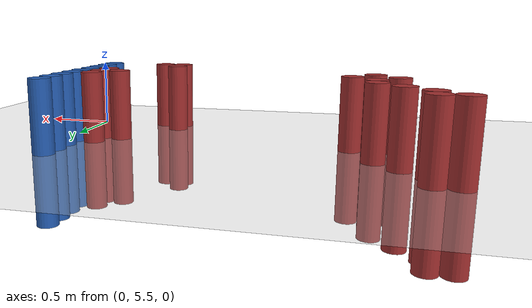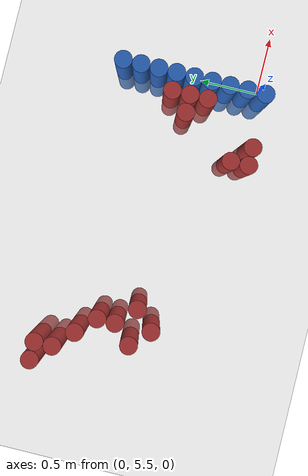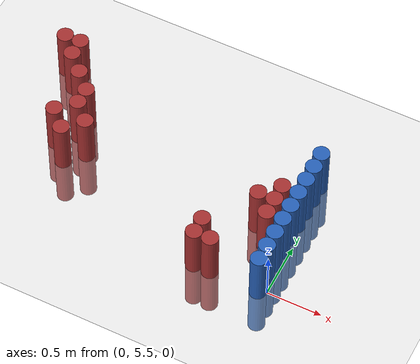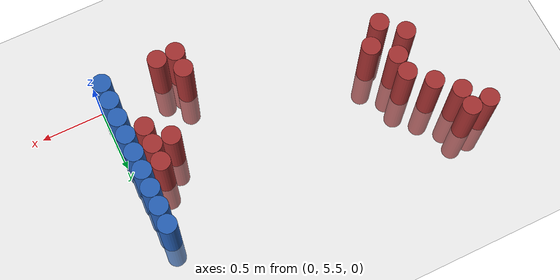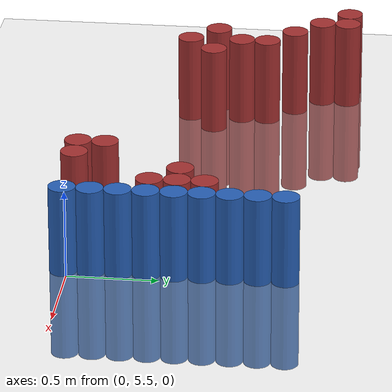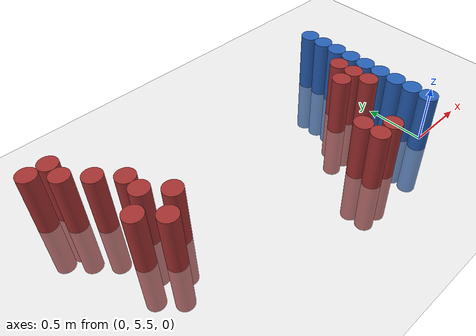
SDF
<sdf version="1.6">
 <world name="world_135">
  <model name="ground_plane">
   <static>1</static>
   <link name="link">
    <collision name="collision">
     <geometry><plane><normal>0 0 1</normal><size>100 100</size></plane></geometry>
     <surface><friction><ode><mu>100</mu><mu2>50</mu2></ode></friction></surface>
    </collision>
    <visual name="visual">
     <cast_shadows>0</cast_shadows>
     <geometry><plane><normal>0 0 1</normal><size>100 100</size></plane></geometry>
     <material>
      <script><uri>file://media/materials/scripts/gazebo.material</uri><name>Gazebo/Grey</name></script>
     </material>
    </visual>
   </link>
  </model>
  <model name="unit_cylinder_148">
   <static>1</static>
   <pose>-2.625000 6.825000 0.000000 0.000000 0.000000 0.000000</pose>
   <link name="link">
    <inertial>
     <mass>1</mass>
     <inertia><ixx>0.145833</ixx><ixy>0</ixy><ixz>0</ixz><iyy>0.145833</iyy><iyz>0</iyz><izz>0.125</izz></inertia>
    </inertial>
    <collision name="collision">
     <geometry><cylinder><radius>0.075000</radius><length>1</length></cylinder></geometry>
    </collision>
    <visual name="visual">
     <geometry><cylinder><radius>0.075000</radius><length>1</length></cylinder></geometry>
     <material>
      <ambient>0.648000 0.192000 0.192000 1</ambient>
      <diffuse>0.648000 0.192000 0.192000 1</diffuse>
     </material>
     <material>
      <script><name>Gazebo/Grey</name><uri>file://media/materials/scripts/gazebo.material</uri></script>
     </material>
    </visual>
   </link>
  </model>
  <model name="unit_cylinder_150">
   <static>1</static>
   <pose>-2.475000 6.675000 0.000000 0.000000 0.000000 0.000000</pose>
   <link name="link">
    <inertial>
     <mass>1</mass>
     <inertia><ixx>0.145833</ixx><ixy>0</ixy><ixz>0</ixz><iyy>0.145833</iyy><iyz>0</iyz><izz>0.125</izz></inertia>
    </inertial>
    <collision name="collision">
     <geometry><cylinder><radius>0.075000</radius><length>1</length></cylinder></geometry>
    </collision>
    <visual name="visual">
     <geometry><cylinder><radius>0.075000</radius><length>1</length></cylinder></geometry>
     <material>
      <ambient>0.648000 0.192000 0.192000 1</ambient>
      <diffuse>0.648000 0.192000 0.192000 1</diffuse>
     </material>
     <material>
      <script><name>Gazebo/Grey</name><uri>file://media/materials/scripts/gazebo.material</uri></script>
     </material>
    </visual>
   </link>
  </model>
  <model name="unit_cylinder_151">
   <static>1</static>
   <pose>-2.475000 6.825000 0.000000 0.000000 0.000000 0.000000</pose>
   <link name="link">
    <inertial>
     <mass>1</mass>
     <inertia><ixx>0.145833</ixx><ixy>0</ixy><ixz>0</ixz><iyy>0.145833</iyy><iyz>0</iyz><izz>0.125</izz></inertia>
    </inertial>
    <collision name="collision">
     <geometry><cylinder><radius>0.075000</radius><length>1</length></cylinder></geometry>
    </collision>
    <visual name="visual">
     <geometry><cylinder><radius>0.075000</radius><length>1</length></cylinder></geometry>
     <material>
      <ambient>0.648000 0.192000 0.192000 1</ambient>
      <diffuse>0.648000 0.192000 0.192000 1</diffuse>
     </material>
     <material>
      <script><name>Gazebo/Grey</name><uri>file://media/materials/scripts/gazebo.material</uri></script>
     </material>
    </visual>
   </link>
  </model>
  <model name="unit_cylinder_152">
   <static>1</static>
   <pose>-2.325000 6.075000 0.000000 0.000000 0.000000 0.000000</pose>
   <link name="link">
    <inertial>
     <mass>1</mass>
     <inertia><ixx>0.145833</ixx><ixy>0</ixy><ixz>0</ixz><iyy>0.145833</iyy><iyz>0</iyz><izz>0.125</izz></inertia>
    </inertial>
    <collision name="collision">
     <geometry><cylinder><radius>0.075000</radius><length>1</length></cylinder></geometry>
    </collision>
    <visual name="visual">
     <geometry><cylinder><radius>0.075000</radius><length>1</length></cylinder></geometry>
     <material>
      <ambient>0.648000 0.192000 0.192000 1</ambient>
      <diffuse>0.648000 0.192000 0.192000 1</diffuse>
     </material>
     <material>
      <script><name>Gazebo/Grey</name><uri>file://media/materials/scripts/gazebo.material</uri></script>
     </material>
    </visual>
   </link>
  </model>
  <model name="unit_cylinder_153">
   <static>1</static>
   <pose>-2.325000 6.525000 0.000000 0.000000 0.000000 0.000000</pose>
   <link name="link">
    <inertial>
     <mass>1</mass>
     <inertia><ixx>0.145833</ixx><ixy>0</ixy><ixz>0</ixz><iyy>0.145833</iyy><iyz>0</iyz><izz>0.125</izz></inertia>
    </inertial>
    <collision name="collision">
     <geometry><cylinder><radius>0.075000</radius><length>1</length></cylinder></geometry>
    </collision>
    <visual name="visual">
     <geometry><cylinder><radius>0.075000</radius><length>1</length></cylinder></geometry>
     <material>
      <ambient>0.648000 0.192000 0.192000 1</ambient>
      <diffuse>0.648000 0.192000 0.192000 1</diffuse>
     </material>
     <material>
      <script><name>Gazebo/Grey</name><uri>file://media/materials/scripts/gazebo.material</uri></script>
     </material>
    </visual>
   </link>
  </model>
  <model name="unit_cylinder_155">
   <static>1</static>
   <pose>-2.175000 5.925000 0.000000 0.000000 0.000000 0.000000</pose>
   <link name="link">
    <inertial>
     <mass>1</mass>
     <inertia><ixx>0.145833</ixx><ixy>0</ixy><ixz>0</ixz><iyy>0.145833</iyy><iyz>0</iyz><izz>0.125</izz></inertia>
    </inertial>
    <collision name="collision">
     <geometry><cylinder><radius>0.075000</radius><length>1</length></cylinder></geometry>
    </collision>
    <visual name="visual">
     <geometry><cylinder><radius>0.075000</radius><length>1</length></cylinder></geometry>
     <material>
      <ambient>0.648000 0.192000 0.192000 1</ambient>
      <diffuse>0.648000 0.192000 0.192000 1</diffuse>
     </material>
     <material>
      <script><name>Gazebo/Grey</name><uri>file://media/materials/scripts/gazebo.material</uri></script>
     </material>
    </visual>
   </link>
  </model>
  <model name="unit_cylinder_156">
   <static>1</static>
   <pose>-2.175000 6.225000 0.000000 0.000000 0.000000 0.000000</pose>
   <link name="link">
    <inertial>
     <mass>1</mass>
     <inertia><ixx>0.145833</ixx><ixy>0</ixy><ixz>0</ixz><iyy>0.145833</iyy><iyz>0</iyz><izz>0.125</izz></inertia>
    </inertial>
    <collision name="collision">
     <geometry><cylinder><radius>0.075000</radius><length>1</length></cylinder></geometry>
    </collision>
    <visual name="visual">
     <geometry><cylinder><radius>0.075000</radius><length>1</length></cylinder></geometry>
     <material>
      <ambient>0.648000 0.192000 0.192000 1</ambient>
      <diffuse>0.648000 0.192000 0.192000 1</diffuse>
     </material>
     <material>
      <script><name>Gazebo/Grey</name><uri>file://media/materials/scripts/gazebo.material</uri></script>
     </material>
    </visual>
   </link>
  </model>
  <model name="unit_cylinder_157">
   <static>1</static>
   <pose>-2.175000 6.375000 0.000000 0.000000 0.000000 0.000000</pose>
   <link name="link">
    <inertial>
     <mass>1</mass>
     <inertia><ixx>0.145833</ixx><ixy>0</ixy><ixz>0</ixz><iyy>0.145833</iyy><iyz>0</iyz><izz>0.125</izz></inertia>
    </inertial>
    <collision name="collision">
     <geometry><cylinder><radius>0.075000</radius><length>1</length></cylinder></geometry>
    </collision>
    <visual name="visual">
     <geometry><cylinder><radius>0.075000</radius><length>1</length></cylinder></geometry>
     <material>
      <ambient>0.648000 0.192000 0.192000 1</ambient>
      <diffuse>0.648000 0.192000 0.192000 1</diffuse>
     </material>
     <material>
      <script><name>Gazebo/Grey</name><uri>file://media/materials/scripts/gazebo.material</uri></script>
     </material>
    </visual>
   </link>
  </model>
  <model name="unit_cylinder_158">
   <static>1</static>
   <pose>-2.025000 6.075000 0.000000 0.000000 0.000000 0.000000</pose>
   <link name="link">
    <inertial>
     <mass>1</mass>
     <inertia><ixx>0.145833</ixx><ixy>0</ixy><ixz>0</ixz><iyy>0.145833</iyy><iyz>0</iyz><izz>0.125</izz></inertia>
    </inertial>
    <collision name="collision">
     <geometry><cylinder><radius>0.075000</radius><length>1</length></cylinder></geometry>
    </collision>
    <visual name="visual">
     <geometry><cylinder><radius>0.075000</radius><length>1</length></cylinder></geometry>
     <material>
      <ambient>0.648000 0.192000 0.192000 1</ambient>
      <diffuse>0.648000 0.192000 0.192000 1</diffuse>
     </material>
     <material>
      <script><name>Gazebo/Grey</name><uri>file://media/materials/scripts/gazebo.material</uri></script>
     </material>
    </visual>
   </link>
  </model>
  <model name="unit_cylinder_162">
   <static>1</static>
   <pose>-0.675000 5.475000 0.000000 0.000000 0.000000 0.000000</pose>
   <link name="link">
    <inertial>
     <mass>1</mass>
     <inertia><ixx>0.145833</ixx><ixy>0</ixy><ixz>0</ixz><iyy>0.145833</iyy><iyz>0</iyz><izz>0.125</izz></inertia>
    </inertial>
    <collision name="collision">
     <geometry><cylinder><radius>0.075000</radius><length>1</length></cylinder></geometry>
    </collision>
    <visual name="visual">
     <geometry><cylinder><radius>0.075000</radius><length>1</length></cylinder></geometry>
     <material>
      <ambient>0.648000 0.192000 0.192000 1</ambient>
      <diffuse>0.648000 0.192000 0.192000 1</diffuse>
     </material>
     <material>
      <script><name>Gazebo/Grey</name><uri>file://media/materials/scripts/gazebo.material</uri></script>
     </material>
    </visual>
   </link>
  </model>
  <model name="unit_cylinder_163">
   <static>1</static>
   <pose>-0.675000 5.625000 0.000000 0.000000 0.000000 0.000000</pose>
   <link name="link">
    <inertial>
     <mass>1</mass>
     <inertia><ixx>0.145833</ixx><ixy>0</ixy><ixz>0</ixz><iyy>0.145833</iyy><iyz>0</iyz><izz>0.125</izz></inertia>
    </inertial>
    <collision name="collision">
     <geometry><cylinder><radius>0.075000</radius><length>1</length></cylinder></geometry>
    </collision>
    <visual name="visual">
     <geometry><cylinder><radius>0.075000</radius><length>1</length></cylinder></geometry>
     <material>
      <ambient>0.648000 0.192000 0.192000 1</ambient>
      <diffuse>0.648000 0.192000 0.192000 1</diffuse>
     </material>
     <material>
      <script><name>Gazebo/Grey</name><uri>file://media/materials/scripts/gazebo.material</uri></script>
     </material>
    </visual>
   </link>
  </model>
  <model name="unit_cylinder_164">
   <static>1</static>
   <pose>-0.525000 5.475000 0.000000 0.000000 0.000000 0.000000</pose>
   <link name="link">
    <inertial>
     <mass>1</mass>
     <inertia><ixx>0.145833</ixx><ixy>0</ixy><ixz>0</ixz><iyy>0.145833</iyy><iyz>0</iyz><izz>0.125</izz></inertia>
    </inertial>
    <collision name="collision">
     <geometry><cylinder><radius>0.075000</radius><length>1</length></cylinder></geometry>
    </collision>
    <visual name="visual">
     <geometry><cylinder><radius>0.075000</radius><length>1</length></cylinder></geometry>
     <material>
      <ambient>0.648000 0.192000 0.192000 1</ambient>
      <diffuse>0.648000 0.192000 0.192000 1</diffuse>
     </material>
     <material>
      <script><name>Gazebo/Grey</name><uri>file://media/materials/scripts/gazebo.material</uri></script>
     </material>
    </visual>
   </link>
  </model>
  <model name="unit_cylinder_165">
   <static>1</static>
   <pose>-0.375000 6.075000 0.000000 0.000000 0.000000 0.000000</pose>
   <link name="link">
    <inertial>
     <mass>1</mass>
     <inertia><ixx>0.145833</ixx><ixy>0</ixy><ixz>0</ixz><iyy>0.145833</iyy><iyz>0</iyz><izz>0.125</izz></inertia>
    </inertial>
    <collision name="collision">
     <geometry><cylinder><radius>0.075000</radius><length>1</length></cylinder></geometry>
    </collision>
    <visual name="visual">
     <geometry><cylinder><radius>0.075000</radius><length>1</length></cylinder></geometry>
     <material>
      <ambient>0.648000 0.192000 0.192000 1</ambient>
      <diffuse>0.648000 0.192000 0.192000 1</diffuse>
     </material>
     <material>
      <script><name>Gazebo/Grey</name><uri>file://media/materials/scripts/gazebo.material</uri></script>
     </material>
    </visual>
   </link>
  </model>
  <model name="unit_cylinder_166">
   <static>1</static>
   <pose>-0.225000 5.925000 0.000000 0.000000 0.000000 0.000000</pose>
   <link name="link">
    <inertial>
     <mass>1</mass>
     <inertia><ixx>0.145833</ixx><ixy>0</ixy><ixz>0</ixz><iyy>0.145833</iyy><iyz>0</iyz><izz>0.125</izz></inertia>
    </inertial>
    <collision name="collision">
     <geometry><cylinder><radius>0.075000</radius><length>1</length></cylinder></geometry>
    </collision>
    <visual name="visual">
     <geometry><cylinder><radius>0.075000</radius><length>1</length></cylinder></geometry>
     <material>
      <ambient>0.648000 0.192000 0.192000 1</ambient>
      <diffuse>0.648000 0.192000 0.192000 1</diffuse>
     </material>
     <material>
      <script><name>Gazebo/Grey</name><uri>file://media/materials/scripts/gazebo.material</uri></script>
     </material>
    </visual>
   </link>
  </model>
  <model name="unit_cylinder_167">
   <static>1</static>
   <pose>-0.225000 6.075000 0.000000 0.000000 0.000000 0.000000</pose>
   <link name="link">
    <inertial>
     <mass>1</mass>
     <inertia><ixx>0.145833</ixx><ixy>0</ixy><ixz>0</ixz><iyy>0.145833</iyy><iyz>0</iyz><izz>0.125</izz></inertia>
    </inertial>
    <collision name="collision">
     <geometry><cylinder><radius>0.075000</radius><length>1</length></cylinder></geometry>
    </collision>
    <visual name="visual">
     <geometry><cylinder><radius>0.075000</radius><length>1</length></cylinder></geometry>
     <material>
      <ambient>0.648000 0.192000 0.192000 1</ambient>
      <diffuse>0.648000 0.192000 0.192000 1</diffuse>
     </material>
     <material>
      <script><name>Gazebo/Grey</name><uri>file://media/materials/scripts/gazebo.material</uri></script>
     </material>
    </visual>
   </link>
  </model>
  <model name="unit_cylinder_168">
   <static>1</static>
   <pose>-0.225000 6.225000 0.000000 0.000000 0.000000 0.000000</pose>
   <link name="link">
    <inertial>
     <mass>1</mass>
     <inertia><ixx>0.145833</ixx><ixy>0</ixy><ixz>0</ixz><iyy>0.145833</iyy><iyz>0</iyz><izz>0.125</izz></inertia>
    </inertial>
    <collision name="collision">
     <geometry><cylinder><radius>0.075000</radius><length>1</length></cylinder></geometry>
    </collision>
    <visual name="visual">
     <geometry><cylinder><radius>0.075000</radius><length>1</length></cylinder></geometry>
     <material>
      <ambient>0.648000 0.192000 0.192000 1</ambient>
      <diffuse>0.648000 0.192000 0.192000 1</diffuse>
     </material>
     <material>
      <script><name>Gazebo/Grey</name><uri>file://media/materials/scripts/gazebo.material</uri></script>
     </material>
    </visual>
   </link>
  </model>
  <model name="unit_cylinder_174">
   <static>1</static>
   <pose>-0.075000 5.475000 0.000000 0.000000 0.000000 0.000000</pose>
   <link name="link">
    <inertial>
     <mass>1</mass>
     <inertia><ixx>0.145833</ixx><ixy>0</ixy><ixz>0</ixz><iyy>0.145833</iyy><iyz>0</iyz><izz>0.125</izz></inertia>
    </inertial>
    <collision name="collision">
     <geometry><cylinder><radius>0.075000</radius><length>1</length></cylinder></geometry>
    </collision>
    <visual name="visual">
     <geometry><cylinder><radius>0.075000</radius><length>1</length></cylinder></geometry>
     <material>
      <ambient>0.152000 0.379000 0.720000 1</ambient>
      <diffuse>0.152000 0.379000 0.720000 1</diffuse>
     </material>
     <material>
      <script><name>Gazebo/Grey</name><uri>file://media/materials/scripts/gazebo.material</uri></script>
     </material>
    </visual>
   </link>
  </model>
  <model name="unit_cylinder_175">
   <static>1</static>
   <pose>-0.075000 5.625000 0.000000 0.000000 0.000000 0.000000</pose>
   <link name="link">
    <inertial>
     <mass>1</mass>
     <inertia><ixx>0.145833</ixx><ixy>0</ixy><ixz>0</ixz><iyy>0.145833</iyy><iyz>0</iyz><izz>0.125</izz></inertia>
    </inertial>
    <collision name="collision">
     <geometry><cylinder><radius>0.075000</radius><length>1</length></cylinder></geometry>
    </collision>
    <visual name="visual">
     <geometry><cylinder><radius>0.075000</radius><length>1</length></cylinder></geometry>
     <material>
      <ambient>0.152000 0.379000 0.720000 1</ambient>
      <diffuse>0.152000 0.379000 0.720000 1</diffuse>
     </material>
     <material>
      <script><name>Gazebo/Grey</name><uri>file://media/materials/scripts/gazebo.material</uri></script>
     </material>
    </visual>
   </link>
  </model>
  <model name="unit_cylinder_176">
   <static>1</static>
   <pose>-0.075000 5.775000 0.000000 0.000000 0.000000 0.000000</pose>
   <link name="link">
    <inertial>
     <mass>1</mass>
     <inertia><ixx>0.145833</ixx><ixy>0</ixy><ixz>0</ixz><iyy>0.145833</iyy><iyz>0</iyz><izz>0.125</izz></inertia>
    </inertial>
    <collision name="collision">
     <geometry><cylinder><radius>0.075000</radius><length>1</length></cylinder></geometry>
    </collision>
    <visual name="visual">
     <geometry><cylinder><radius>0.075000</radius><length>1</length></cylinder></geometry>
     <material>
      <ambient>0.152000 0.379000 0.720000 1</ambient>
      <diffuse>0.152000 0.379000 0.720000 1</diffuse>
     </material>
     <material>
      <script><name>Gazebo/Grey</name><uri>file://media/materials/scripts/gazebo.material</uri></script>
     </material>
    </visual>
   </link>
  </model>
  <model name="unit_cylinder_177">
   <static>1</static>
   <pose>-0.075000 5.925000 0.000000 0.000000 0.000000 0.000000</pose>
   <link name="link">
    <inertial>
     <mass>1</mass>
     <inertia><ixx>0.145833</ixx><ixy>0</ixy><ixz>0</ixz><iyy>0.145833</iyy><iyz>0</iyz><izz>0.125</izz></inertia>
    </inertial>
    <collision name="collision">
     <geometry><cylinder><radius>0.075000</radius><length>1</length></cylinder></geometry>
    </collision>
    <visual name="visual">
     <geometry><cylinder><radius>0.075000</radius><length>1</length></cylinder></geometry>
     <material>
      <ambient>0.152000 0.379000 0.720000 1</ambient>
      <diffuse>0.152000 0.379000 0.720000 1</diffuse>
     </material>
     <material>
      <script><name>Gazebo/Grey</name><uri>file://media/materials/scripts/gazebo.material</uri></script>
     </material>
    </visual>
   </link>
  </model>
  <model name="unit_cylinder_178">
   <static>1</static>
   <pose>-0.075000 6.075000 0.000000 0.000000 0.000000 0.000000</pose>
   <link name="link">
    <inertial>
     <mass>1</mass>
     <inertia><ixx>0.145833</ixx><ixy>0</ixy><ixz>0</ixz><iyy>0.145833</iyy><iyz>0</iyz><izz>0.125</izz></inertia>
    </inertial>
    <collision name="collision">
     <geometry><cylinder><radius>0.075000</radius><length>1</length></cylinder></geometry>
    </collision>
    <visual name="visual">
     <geometry><cylinder><radius>0.075000</radius><length>1</length></cylinder></geometry>
     <material>
      <ambient>0.152000 0.379000 0.720000 1</ambient>
      <diffuse>0.152000 0.379000 0.720000 1</diffuse>
     </material>
     <material>
      <script><name>Gazebo/Grey</name><uri>file://media/materials/scripts/gazebo.material</uri></script>
     </material>
    </visual>
   </link>
  </model>
  <model name="unit_cylinder_179">
   <static>1</static>
   <pose>-0.075000 6.225000 0.000000 0.000000 0.000000 0.000000</pose>
   <link name="link">
    <inertial>
     <mass>1</mass>
     <inertia><ixx>0.145833</ixx><ixy>0</ixy><ixz>0</ixz><iyy>0.145833</iyy><iyz>0</iyz><izz>0.125</izz></inertia>
    </inertial>
    <collision name="collision">
     <geometry><cylinder><radius>0.075000</radius><length>1</length></cylinder></geometry>
    </collision>
    <visual name="visual">
     <geometry><cylinder><radius>0.075000</radius><length>1</length></cylinder></geometry>
     <material>
      <ambient>0.152000 0.379000 0.720000 1</ambient>
      <diffuse>0.152000 0.379000 0.720000 1</diffuse>
     </material>
     <material>
      <script><name>Gazebo/Grey</name><uri>file://media/materials/scripts/gazebo.material</uri></script>
     </material>
    </visual>
   </link>
  </model>
  <model name="unit_cylinder_180">
   <static>1</static>
   <pose>-0.075000 6.375000 0.000000 0.000000 0.000000 0.000000</pose>
   <link name="link">
    <inertial>
     <mass>1</mass>
     <inertia><ixx>0.145833</ixx><ixy>0</ixy><ixz>0</ixz><iyy>0.145833</iyy><iyz>0</iyz><izz>0.125</izz></inertia>
    </inertial>
    <collision name="collision">
     <geometry><cylinder><radius>0.075000</radius><length>1</length></cylinder></geometry>
    </collision>
    <visual name="visual">
     <geometry><cylinder><radius>0.075000</radius><length>1</length></cylinder></geometry>
     <material>
      <ambient>0.152000 0.379000 0.720000 1</ambient>
      <diffuse>0.152000 0.379000 0.720000 1</diffuse>
     </material>
     <material>
      <script><name>Gazebo/Grey</name><uri>file://media/materials/scripts/gazebo.material</uri></script>
     </material>
    </visual>
   </link>
  </model>
  <model name="unit_cylinder_181">
   <static>1</static>
   <pose>-0.075000 6.525000 0.000000 0.000000 0.000000 0.000000</pose>
   <link name="link">
    <inertial>
     <mass>1</mass>
     <inertia><ixx>0.145833</ixx><ixy>0</ixy><ixz>0</ixz><iyy>0.145833</iyy><iyz>0</iyz><izz>0.125</izz></inertia>
    </inertial>
    <collision name="collision">
     <geometry><cylinder><radius>0.075000</radius><length>1</length></cylinder></geometry>
    </collision>
    <visual name="visual">
     <geometry><cylinder><radius>0.075000</radius><length>1</length></cylinder></geometry>
     <material>
      <ambient>0.152000 0.379000 0.720000 1</ambient>
      <diffuse>0.152000 0.379000 0.720000 1</diffuse>
     </material>
     <material>
      <script><name>Gazebo/Grey</name><uri>file://media/materials/scripts/gazebo.material</uri></script>
     </material>
    </visual>
   </link>
  </model>
  <model name="unit_cylinder_182">
   <static>1</static>
   <pose>-0.075000 6.675000 0.000000 0.000000 0.000000 0.000000</pose>
   <link name="link">
    <inertial>
     <mass>1</mass>
     <inertia><ixx>0.145833</ixx><ixy>0</ixy><ixz>0</ixz><iyy>0.145833</iyy><iyz>0</iyz><izz>0.125</izz></inertia>
    </inertial>
    <collision name="collision">
     <geometry><cylinder><radius>0.075000</radius><length>1</length></cylinder></geometry>
    </collision>
    <visual name="visual">
     <geometry><cylinder><radius>0.075000</radius><length>1</length></cylinder></geometry>
     <material>
      <ambient>0.152000 0.379000 0.720000 1</ambient>
      <diffuse>0.152000 0.379000 0.720000 1</diffuse>
     </material>
     <material>
      <script><name>Gazebo/Grey</name><uri>file://media/materials/scripts/gazebo.material</uri></script>
     </material>
    </visual>
   </link>
  </model>
 </world>
</sdf>
